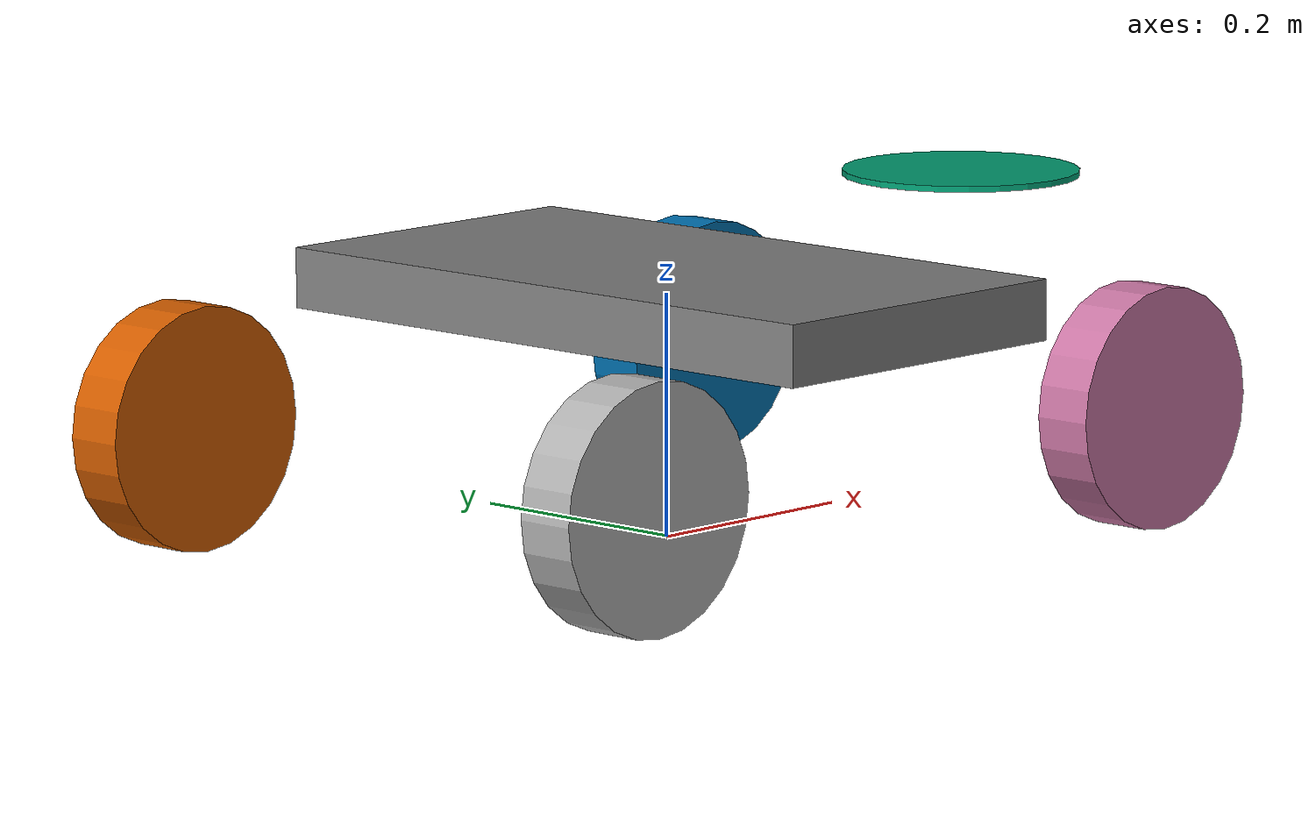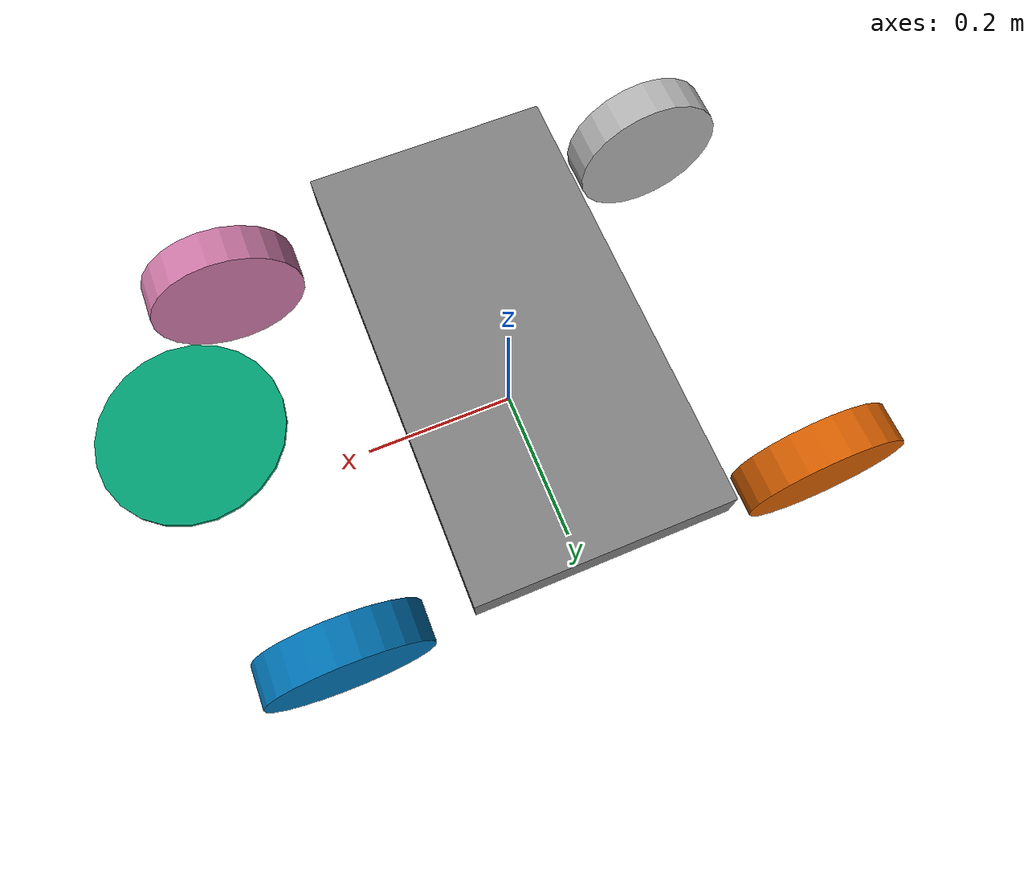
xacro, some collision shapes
<?xml version="1.0"?>

<robot name="mm1" xmlns:xacro="http://ros.org/wiki/xacro" xmlns:gz="http://gazebosim.org/schema">

  <xacro:arg name="omni" default="false" />

  <xacro:if value="$(arg omni)">
    <xacro:include filename="$(find lampo_description)/urdf/sweepee/sweepee_omni.xacro" />
  </xacro:if>

  <xacro:unless value="$(arg omni)">
    <xacro:include filename="$(find lampo_description)/urdf/sweepee/sweepee_diff.xacro" />
  </xacro:unless>

  <xacro:arg name="name" default="ur"/>
  <xacro:include filename="$(find ur_description)/urdf/ur_macro.xacro"/>

  <xacro:arg name="ur_type" default="ur10"/>

  <!-- parameters -->
  <xacro:arg name="prefix" default="" />
  <xacro:arg name="prefix_rc" default="" />
  <xacro:arg name="joint_limit_params" default="$(find ur_description)/config/$(arg ur_type)/joint_limits.yaml"/>
  <xacro:arg name="kinematics_params" default="$(find ur_description)/config/$(arg ur_type)/default_kinematics.yaml"/>
  <xacro:arg name="physical_params" default="$(find ur_description)/config/$(arg ur_type)/physical_parameters.yaml"/>
  <xacro:arg name="visual_params" default="$(find ur_description)/config/$(arg ur_type)/visual_parameters.yaml"/>
  <xacro:arg name="transmission_hw_interface" default=""/>
  <xacro:arg name="safety_limits" default="false"/>
  <xacro:arg name="safety_pos_margin" default="0.15"/>
  <xacro:arg name="safety_k_position" default="20"/>
  <!-- ros2_control related parameters -->
  <xacro:arg name="headless_mode" default="false" />
  <xacro:arg name="robot_ip" default="0.0.0.0" />
  <xacro:arg name="script_filename" default=""/>
  <xacro:arg name="output_recipe_filename" default=""/>
  <xacro:arg name="input_recipe_filename" default=""/>
  <!--   tool communication related parameters-->
  <xacro:arg name="use_tool_communication" default="false" />
  <xacro:arg name="tool_voltage" default="24" />
  <xacro:arg name="tool_parity" default="0" />
  <xacro:arg name="tool_baud_rate" default="115200" />
  <xacro:arg name="tool_stop_bits" default="1" />
  <xacro:arg name="tool_rx_idle_chars" default="1.5" />
  <xacro:arg name="tool_tx_idle_chars" default="3.5" />
  <xacro:arg name="tool_device_name" default="/tmp/ttyUR" />
  <xacro:arg name="tool_tcp_port" default="54321" />

    <!-- Simulation parameters -->
  <xacro:arg name="sim_gazebo" default="false" />
  <xacro:arg name="sim_gz" default="false" />
  <xacro:arg name="mm" default="false" />
  <xacro:arg name="simulation_controllers" default="error_default" />

  <!-- initial position for simulations (Fake Hardware, Gazebo, Ignition) -->
  <xacro:arg name="initial_positions_file" default="$(find ur_description)/config/initial_positions.yaml"/>

  <!-- convert to property to use substitution in function -->
  <xacro:property name="initial_positions_file" default="$(arg initial_positions_file)"/>

  <xacro:property name="M_PI" value="3.14159"/>

  <xacro:sweepee  prefix="$(arg prefix)">
    <origin xyz="0 0 0" rpy="0 0 0" />
  </xacro:sweepee>

  <!-- Camera -->
  <xacro:include filename="$(find lampo_description)/urdf/sweepee/camera.urdf.xacro"/>

  <xacro:if value="$(arg mm)">
    <xacro:fake_camera prefix="$(arg prefix)" parent="$(arg prefix)tool0">
      <origin xyz="0 0 0.05" rpy="1.57 -1.57 1.57" />
    </xacro:fake_camera>
  </xacro:if>

   <!-- arm -->
  <xacro:if value="$(arg mm)">
    <xacro:ur_robot
      name="$(arg name)"
      tf_prefix="$(arg prefix)"
      parent="$(arg prefix)base_footprint"
      joint_limits_parameters_file="$(arg joint_limit_params)"
      kinematics_parameters_file="$(arg kinematics_params)"
      physical_parameters_file="$(arg physical_params)"
      visual_parameters_file="$(arg visual_params)"
      safety_limits="$(arg safety_limits)"
      safety_pos_margin="$(arg safety_pos_margin)"
      safety_k_position="$(arg safety_k_position)"
      >
      <origin xyz="0 0 0.4" rpy="0 0 0" />
    </xacro:ur_robot>
  </xacro:if>

  <xacro:if value="$(arg mm)">
    <gazebo>
      <plugin
        filename="gz-sim-joint-position-controller-system"
        name="gz::sim::systems::JointPositionController">
        <joint_name>$(arg prefix_rc)/shoulder_pan_joint</joint_name>
        <topic>$(arg prefix_rc)/shoulder_pan_joint</topic>
        <p_gain>5000</p_gain>
        <i_gain>0.1</i_gain>
        <d_gain>200.00</d_gain>
        <i_max>100000</i_max>
        <i_min>-100000</i_min>
        <cmd_max>100000000</cmd_max>
        <cmd_min>-100000000</cmd_min>
        <initial_position>0</initial_position>
      </plugin>
    </gazebo>

    <gazebo>
      <plugin
        filename="gz-sim-joint-position-controller-system"
        name="gz::sim::systems::JointPositionController">
        <joint_name>$(arg prefix_rc)/shoulder_lift_joint</joint_name>
        <topic>$(arg prefix_rc)/shoulder_lift_joint</topic>
        <p_gain>10000</p_gain>
        <i_gain>0.1</i_gain>
        <d_gain>200.00</d_gain>
        <i_max>100000</i_max>
        <i_min>-100000</i_min>
        <cmd_max>100000000</cmd_max>
        <cmd_min>-100000000</cmd_min>
        <initial_position>-1</initial_position>
      </plugin>
    </gazebo>

    <gazebo>
      <plugin
        filename="gz-sim-joint-position-controller-system"
        name="gz::sim::systems::JointPositionController">
        <joint_name>$(arg prefix_rc)/elbow_joint</joint_name>
        <topic>$(arg prefix_rc)/elbow_joint</topic>
        <p_gain>10000</p_gain>
        <i_gain>0.1</i_gain>
        <d_gain>200.00</d_gain>
        <i_max>100000</i_max>
        <i_min>-100000</i_min>
        <cmd_max>100000000</cmd_max>
        <cmd_min>-100000000</cmd_min>
        <initial_position>0</initial_position>
      </plugin>
    </gazebo>

    <gazebo>
      <plugin
        filename="gz-sim-joint-position-controller-system"
        name="gz::sim::systems::JointPositionController">
        <joint_name>$(arg prefix_rc)/wrist_1_joint</joint_name>
        <topic>$(arg prefix_rc)/wrist_1_joint</topic>
        <p_gain>2000</p_gain>
        <i_gain>0.1</i_gain>
        <d_gain>200.00</d_gain>
        <i_max>100000</i_max>
        <i_min>-100000</i_min>
        <cmd_max>100000000</cmd_max>
        <cmd_min>-100000000</cmd_min>
        <initial_position>-1</initial_position>
      </plugin>
    </gazebo>

    <gazebo>
      <plugin
        filename="gz-sim-joint-position-controller-system"
        name="gz::sim::systems::JointPositionController">
        <joint_name>$(arg prefix_rc)/wrist_2_joint</joint_name>
        <topic>$(arg prefix_rc)/wrist_2_joint</topic>
        <p_gain>2000</p_gain>
        <i_gain>0.1</i_gain>
        <d_gain>200.00</d_gain>
        <i_max>100000</i_max>
        <i_min>-100000</i_min>
        <cmd_max>100000000</cmd_max>
        <cmd_min>-100000000</cmd_min>
        <initial_position>0</initial_position>
      </plugin>
    </gazebo>

    <gazebo>
      <plugin
        filename="gz-sim-joint-position-controller-system"
        name="gz::sim::systems::JointPositionController">
        <joint_name>$(arg prefix_rc)/wrist_3_joint</joint_name>
        <topic>$(arg prefix_rc)/wrist_3_joint</topic>
        <p_gain>0</p_gain>
        <i_gain>0.1</i_gain>
        <d_gain>200.00</d_gain>
        <i_max>100000</i_max>
        <i_min>-100000</i_min>
        <cmd_max>100000000</cmd_max>
        <cmd_min>-100000000</cmd_min>
        <initial_position>0</initial_position>
      </plugin>
    </gazebo>

    <gazebo>
      <plugin
        filename="gz-sim-joint-state-publisher-system"
        name="gz::sim::systems::JointStatePublisher">
        <topic>$(arg prefix_rc)/joint_states</topic>
      </plugin>
    </gazebo>

    <ros2_control name="name" type="system">
      <hardware>
          <plugin>topic_based_ros2_control/TopicBasedSystem</plugin>
          <param name="joint_commands_topic">joint_commands</param>
          <param name="joint_states_topic">jnt_gz</param>
          <param name="sum_wrapped_joint_states">false</param>
      </hardware>

      <joint name="$(arg prefix_rc)/shoulder_pan_joint">
          <command_interface name="position"/>
          <state_interface name="position"/>
          <state_interface name="velocity"/>
      </joint>

      <joint name="$(arg prefix_rc)/shoulder_lift_joint">
          <command_interface name="position"/>
          <state_interface name="position"/>
          <state_interface name="velocity"/>
      </joint>

      <joint name="$(arg prefix_rc)/elbow_joint">
          <command_interface name="position"/>
          <state_interface name="position"/>
          <state_interface name="velocity"/>
      </joint>

      <joint name="$(arg prefix_rc)/wrist_1_joint">
          <command_interface name="position"/>
          <state_interface name="position"/>
          <state_interface name="velocity"/>
      </joint>

      <joint name="$(arg prefix_rc)/wrist_2_joint">
          <command_interface name="position"/>
          <state_interface name="position"/>
          <state_interface name="velocity"/>
      </joint>

      <joint name="$(arg prefix_rc)/wrist_3_joint">
          <command_interface name="position"/>
          <state_interface name="position"/>
          <state_interface name="velocity"/>
      </joint>
    </ros2_control>

  </xacro:if>

</robot>

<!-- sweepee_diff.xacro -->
<robot name="eureca" xmlns:xacro="http://www.ros.org/wiki/xacro" xmlns:gz="http://gazebosim.org/schema">

  <xacro:property name="M_PI" value="3.14159"/>

  <!-- Base Size -->
  <xacro:property name="base_x_size" value="1.02" />
  <xacro:property name="base_y_size" value="0.55" />
  <xacro:property name="base_z_size" value="0.35" />

  <xacro:macro name="sweepee" params="prefix *origin">

    <!-- Base footprint is on the ground under the robot -->
    <link name="${prefix}base_footprint">
    </link>

    <!-- Base link is the center of the robot's bottom plate -->
    <link name="${prefix}base_link_sweepee">
      <visual>
        <origin xyz="0 0 0.032" rpy="0 0 -${M_PI/2}" />
        <geometry>
          <mesh filename="file://$(find lampo_description)//meshes/sweepee/visual/sweepee.dae"/>
        </geometry>
        <material name="Gray">
          <color rgba="0.5 0.5 0.5 1.0" />
        </material>
      </visual>
      <inertial>
          <origin xyz="0 0 0.2" rpy="0 0 0" />
          <mass value="250" />
          <inertia ixx="12.0" ixy="0.0" ixz="0.0" iyy="12.0" iyz="0.0" izz="12.0" />
      </inertial>
      <collision>
        <origin xyz="0 0 0.2" rpy="0 0 0" />
        <geometry>
          <box size="0.3 ${base_y_size} 0.05"/>
        </geometry>
      </collision>
    </link>

    <joint name="${prefix}base_footprint_joint" type="fixed">
      <xacro:insert_block name="origin"/>
      <parent link="${prefix}base_footprint" />
      <child link="${prefix}base_link_sweepee" />
    </joint>

    <link name="${prefix}front_laser">
      <inertial>
        <mass value="5"/>
        <inertia ixx="0.145"  ixy="0"  ixz="0" iyy="0.145" iyz="0" izz="0.125" />
      </inertial>
      <visual>
        <geometry>
          <cylinder length="0.005" radius="0.1"/>
        </geometry>
      </visual>
    </link>

    <joint name="${prefix}front_laser_joint" type="fixed">
      <origin xyz="${base_x_size/2-0.15} 0.0 ${base_z_size/2+0.085}" rpy="0 0 0" />
      <parent link="${prefix}base_link_sweepee" />
      <child link="${prefix}front_laser" />
    </joint>

      <link name="${prefix}rear_laser" />
    <joint name="${prefix}rear_laser_joint" type="fixed">
      <origin xyz="${-base_x_size/2+0.15} 0.0 ${base_z_size/2+0.085}" rpy="0 0 ${M_PI}" />
      <parent link="${prefix}base_link_sweepee" />
      <child link="${prefix}rear_laser" />
    </joint>

      <link name='${prefix}front_left_wheel'>
        <inertial>
          <mass value="5"/>
          <inertia ixx="0.145"  ixy="0"  ixz="0" iyy="0.145" iyz="0" izz="0.125" />
        </inertial>
        <visual>
          <geometry>
            <cylinder length="0.05" radius="0.1"/>
          </geometry>
        </visual>
        <collision>
          <geometry>
            <cylinder length="0.05" radius="0.1"/>
          </geometry>
        </collision>
      </link>

      <link name='${prefix}rear_left_wheel'>
        <inertial>
          <mass value="5"/>
          <inertia ixx="0.145"  ixy="0"  ixz="0" iyy="0.145" iyz="0" izz="0.125" />
        </inertial>
        <visual>
          <geometry>
            <cylinder length="0.05" radius="0.1"/>
          </geometry>
        </visual>
        <collision>
          <geometry>
            <cylinder length="0.05" radius="0.1"/>
          </geometry>
        </collision>
      </link>

      <link name='${prefix}front_right_wheel'>
        <inertial>
          <mass value="5"/>
          <inertia ixx="0.145"  ixy="0"  ixz="0" iyy="0.145" iyz="0" izz="0.125" />
        </inertial>
        <visual>
          <geometry>
            <cylinder length="0.05" radius="0.1"/>
          </geometry>
        </visual>
        <collision>
          <geometry>
            <cylinder length="0.05" radius="0.1"/>
          </geometry>
        </collision>
      </link>

      <link name='${prefix}rear_right_wheel'>
        <inertial>
          <mass value="5"/>
          <inertia ixx="0.145"  ixy="0"  ixz="0" iyy="0.145" iyz="0" izz="0.125" />
        </inertial>
        <visual>
          <geometry>
            <cylinder length="0.05" radius="0.1"/>
          </geometry>
        </visual>
        <collision>
          <geometry>
            <cylinder length="0.05" radius="0.1"/>
          </geometry>
        </collision>
      </link>

      <gazebo reference='${prefix}front_left_wheel'>
        <collision>
          <surface>
            <friction>
              <ode>
                <mu>0.7</mu>
                <mu2>0.3</mu2>
              </ode>
            </friction>
          </surface>
        </collision>
      </gazebo>

      <gazebo reference='${prefix}front_right_wheel'>
        <collision>
          <surface>
            <friction>
              <ode>
                <mu>0.7</mu>
                <mu2>0.3</mu2>
              </ode>
            </friction>
          </surface>
        </collision>
      </gazebo>

      <gazebo reference='${prefix}rear_left_wheel'>
        <collision>
          <surface>
            <friction>
              <ode>
                <mu>0.05</mu>
                <mu2>0.01</mu2>
              </ode>
            </friction>
          </surface>
        </collision>
      </gazebo>

      <gazebo reference='${prefix}rear_right_wheel'>
        <collision>
          <surface>
            <friction>
              <ode>
                <mu>0.05</mu>
                <mu2>0.01</mu2>
              </ode>
            </friction>
          </surface>
        </collision>
      </gazebo>

      <joint name='${prefix}front_left_wheel_joint' type='revolute'>
        <origin xyz="0.3 0.25 0.1" rpy="-1.5707 0 0"/>
        <parent link="${prefix}base_link_sweepee"/>
        <child link="${prefix}front_left_wheel"/>
        <axis xyz="0 0 1"/>
        <limit effort="10000.0" lower="-1.79769e+308" upper="1.79769e+308" velocity="15.1"/>
      </joint>

      <joint name='${prefix}front_right_wheel_joint' type='revolute'>
        <origin xyz="0.3 -0.25 0.1" rpy="-1.5707 0 0"/>
        <parent link="${prefix}base_link_sweepee"/>
        <child link="${prefix}front_right_wheel"/>
        <axis xyz="0 0 1"/>
        <limit effort="10000.0" lower="-1.79769e+308" upper="1.79769e+308" velocity="15.1"/>
      </joint>

      <joint name='${prefix}rear_left_wheel_joint' type='revolute'>
        <origin xyz="-0.3 0.25 0.1" rpy="-1.5707 0 0"/>
        <parent link="${prefix}base_link_sweepee"/>
        <child link="${prefix}rear_left_wheel"/>
        <axis xyz="0 0 1"/>
        <limit effort="10000.0" lower="-1.79769e+308" upper="1.79769e+308" velocity="15.1"/>
      </joint>

      <joint name='${prefix}rear_right_wheel_joint' type='revolute'>
        <origin xyz="-0.3 -0.25 0.1" rpy="-1.5707 0 0"/>
        <parent link="${prefix}base_link_sweepee"/>
        <child link="${prefix}rear_right_wheel"/>
        <axis xyz="0 0 1"/>
        <limit effort="10000.0" lower="-1.79769e+308" upper="1.79769e+308" velocity="15.1"/>
      </joint>

  <gazebo reference="${prefix}front_laser">
    <sensor name='gpu_lidar' type='gpu_lidar'>"
        <pose relative_to='${prefix}front_laser'>0 0 0 0 0 0</pose>
        <gz_frame_id>${prefix}front_laser</gz_frame_id>
        <topic>${prefix}lidar</topic>
        <update_rate>10</update_rate>
        <ray>
            <scan>
                <horizontal>
                    <samples>640</samples>
                    <resolution>1</resolution>
                    <min_angle>-1.396263</min_angle>
                    <max_angle>1.396263</max_angle>
                </horizontal>
                <vertical>
                    <samples>1</samples>
                    <resolution>0.01</resolution>
                    <min_angle>0</min_angle>
                    <max_angle>0</max_angle>
                </vertical>
            </scan>
            <range>
                <min>0.15</min>
                <max>30.0</max>
                <resolution>0.01</resolution>
            </range>
        </ray>
        <always_on>1</always_on>
        <visualize>true</visualize>
    </sensor>
  </gazebo>

  <gazebo>
      <plugin
        filename="gz-sim-diff-drive-system"
        name="gz::sim::systems::DiffDrive">
        <left_joint>${prefix}front_left_wheel_joint</left_joint>
        <right_joint>${prefix}front_right_wheel_joint</right_joint>
        <wheel_separation>0.5</wheel_separation>
        <wheel_radius>0.1</wheel_radius>
        <odom_publish_frequency>25</odom_publish_frequency>
        <max_linear_acceleration>1</max_linear_acceleration>
        <min_linear_acceleration>-1</min_linear_acceleration>
        <max_angular_acceleration>2</max_angular_acceleration>
        <min_angular_acceleration>-2</min_angular_acceleration>
        <max_linear_velocity>0.5</max_linear_velocity>
        <min_linear_velocity>-0.5</min_linear_velocity>
        <max_angular_velocity>1</max_angular_velocity>
        <min_angular_velocity>-1</min_angular_velocity>
        <topic>${prefix}cmd_vel</topic>
        <frame_id>${prefix}odom</frame_id>
        <odom_topic>${prefix}odom</odom_topic>
        <child_frame_id>${prefix}base_footprint</child_frame_id>
        <tf_topic>tf</tf_topic>
      </plugin>
    </gazebo>

  </xacro:macro>

</robot>
